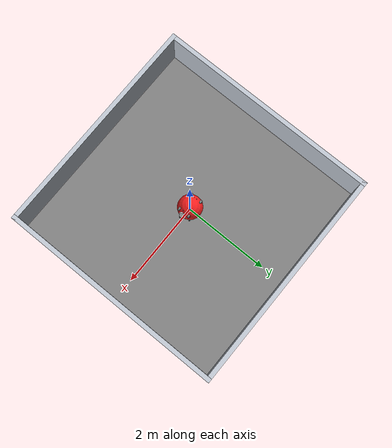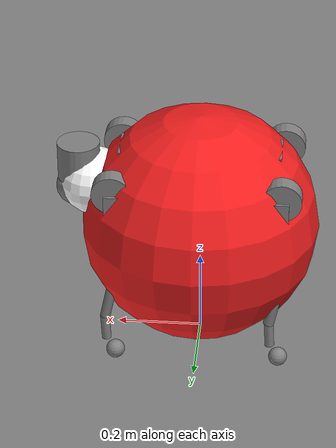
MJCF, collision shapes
<!-- Web viewer arena: uses go2.xml (with OBJ visual meshes) for mjswan. -->
<mujoco model="go2_arena_web">
  <include file="go2_posctrl.xml"/>

  <statistic center="0 0 0.3" extent="4"/>

  <!-- walk_web.xml と同じ照明設定。これが無いとブラウザで壁の内側が
       真っ暗になり、ロボットも鬼もほとんど見えない。 -->
  <visual>
    <headlight diffuse="0.6 0.6 0.6" ambient="0.4 0.4 0.4" specular="0 0 0"/>
    <rgba haze="0.15 0.25 0.35 1"/>
    <global azimuth="-120" elevation="-20"/>
  </visual>

  <asset>
    <texture type="skybox" builtin="gradient"
      rgb1="0.4 0.6 0.8" rgb2="0.1 0.2 0.3" width="512" height="3072"/>
    <texture type="2d" name="floor_tex" builtin="checker"
      rgb1="0.55 0.55 0.55" rgb2="0.45 0.45 0.45" width="200" height="200"/>
    <material name="floor_mat" texture="floor_tex" texrepeat="5 5" reflectance="0.1"/>
    <material name="wall_mat" rgba="0.75 0.78 0.82 1"/>
    <material name="oni_mat" rgba="0.95 0.12 0.12 1"/>
  </asset>

  <worldbody>
    <light name="sun" pos="0 0 4" dir="0 0 -1" directional="true"
      diffuse="0.8 0.8 0.8" specular="0 0 0"/>

    <!-- 5m×5m フロア -->
    <geom name="floor" type="plane" size="2.5 2.5 0.1" material="floor_mat"
      contype="1" conaffinity="1" friction="0.8 0.1 0.1"/>

    <!-- 北壁 y=+2.5 -->
    <geom name="wall_n" type="box" material="wall_mat" pos="0  2.55 0.5" size="2.6 0.05 0.5"
      contype="1" conaffinity="1"/>
    <!-- 南壁 y=-2.5 -->
    <geom name="wall_s" type="box" material="wall_mat" pos="0 -2.55 0.5" size="2.6 0.05 0.5"
      contype="1" conaffinity="1"/>
    <!-- 東壁 x=+2.5 -->
    <geom name="wall_e" type="box" material="wall_mat" pos=" 2.55 0 0.5" size="0.05 2.6 0.5"
      contype="1" conaffinity="1"/>
    <!-- 西壁 x=-2.5 -->
    <geom name="wall_w" type="box" material="wall_mat" pos="-2.55 0 0.5" size="0.05 2.6 0.5"
      contype="1" conaffinity="1"/>

    <!-- 鬼（赤い球）: slide 関節で移動
         qpos[19]=oni_x, qpos[20]=oni_y -->
    <body name="oni" pos="0 0 0.3">
      <joint name="oni_x" type="slide" axis="1 0 0"
        limited="true" range="-2.4 2.4" damping="100" frictionloss="0"/>
      <joint name="oni_y" type="slide" axis="0 1 0"
        limited="true" range="-2.4 2.4" damping="100" frictionloss="0"/>
      <geom name="oni_body" type="sphere" size="0.28" material="oni_mat"
        contype="0" conaffinity="0" mass="0.001"/>
      <!-- 鬼の方向インジケーター（目のような突起） -->
      <geom name="oni_eye" type="sphere" size="0.08" pos="0.25 0 0.1"
        rgba="1 1 1 1" contype="0" conaffinity="0" mass="0"/>
    </body>
  </worldbody>

  <keyframe>
    <key name="arena_home"
      qpos="0 0 0.27 1 0 0 0 0 0.9 -1.8 0 0.9 -1.8 0 0.9 -1.8 0 0.9 -1.8 1.6 1.6"
      ctrl="0 0.9 -1.8 0 0.9 -1.8 0 0.9 -1.8 0 0.9 -1.8" />
  </keyframe>
</mujoco>

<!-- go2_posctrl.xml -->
<!-- Go2 with position actuators (kp=20, joint damping=0.5).
     Use this for both mjswan viewer AND training so that ctrl = q_target
     and physics handles the PD internally. -->
<mujoco model="go2_posctrl">
  <compiler angle="radian" meshdir="assets" autolimits="true" />

  <option cone="elliptic" impratio="100" />

  <default>
    <default class="go2">
      <geom friction="0.4" margin="0.001" condim="1"/>
      <!-- damping=0.5 matches KD used in manual PD of the motor version -->
      <joint axis="0 1 0" damping="0.5" armature="0.01" frictionloss="0.2"/>
      <default class="abduction">
        <joint axis="1 0 0" range="-1.0472 1.0472"/>
        <position ctrlrange="-1.0472 1.0472"/>
      </default>
      <default class="hip">
        <default class="front_hip">
          <joint range="-1.5708 3.4907"/>
          <position ctrlrange="-1.5708 3.4907"/>
        </default>
        <default class="back_hip">
          <joint range="-0.5236 4.5379"/>
          <position ctrlrange="-0.5236 4.5379"/>
        </default>
      </default>
      <default class="knee">
        <joint range="-2.7227 -0.83776"/>
        <position ctrlrange="-2.7227 -0.83776"/>
      </default>
      <default class="visual">
        <geom type="mesh" contype="0" conaffinity="0" group="2"/>
      </default>
      <default class="collision">
        <geom group="3"/>
        <default class="foot">
          <geom size="0.022" pos="-0.002 0 -0.213" priority="1" condim="6"
            friction="0.4 0.02 0.01"/>
        </default>
      </default>
    </default>
  </default>

  <asset>
    <material name="metal" rgba=".9 .95 .95 1" />
    <material name="black" rgba="0 0 0 1" />
    <material name="white" rgba="1 1 1 1" />
    <material name="gray" rgba="0.671705 0.692426 0.774270 1" />

    <mesh file="base_0.obj" />
    <mesh file="base_1.obj" />
    <mesh file="base_2.obj" />
    <mesh file="base_3.obj" />
    <mesh file="base_4.obj" />
    <mesh file="hip_0.obj" />
    <mesh file="hip_1.obj" />
    <mesh file="thigh_0.obj" />
    <mesh file="thigh_1.obj" />
    <mesh file="thigh_mirror_0.obj" />
    <mesh file="thigh_mirror_1.obj" />
    <mesh file="calf_0.obj" />
    <mesh file="calf_1.obj" />
    <mesh file="calf_mirror_0.obj" />
    <mesh file="calf_mirror_1.obj" />
    <mesh file="foot.obj" />
  </asset>

  <worldbody>
    <body name="base_link" pos="0 0 0.445" childclass="go2">
      <inertial pos="0.021112 0 -0.005366" quat="-0.000543471 0.713435 -0.00173769 0.700719"
        mass="6.921"
        diaginertia="0.107027 0.0980771 0.0244531" />
      <freejoint />
      <geom mesh="base_0" material="black" class="visual" />
      <geom mesh="base_1" material="black" class="visual" />
      <geom mesh="base_2" material="black" class="visual" />
      <geom mesh="base_3" material="white" class="visual" />
      <geom mesh="base_4" material="gray" class="visual" />
      <geom size="0.1881 0.04675 0.057" type="box" class="collision" />
      <geom size="0.05 0.045" pos="0.285 0 0.01" type="cylinder" class="collision" />
      <geom size="0.047" pos="0.293 0 -0.06" class="collision" />
      <site name="imu" pos="-0.02557 0 0.04232" />
      <body name="FL_hip" pos="0.1934 0.0465 0">
        <inertial pos="-0.0054 0.00194 -0.000105" quat="0.497014 0.499245 0.505462 0.498237"
          mass="0.678"
          diaginertia="0.00088403 0.000596003 0.000479967" />
        <joint name="FL_hip_joint" class="abduction" />
        <geom mesh="hip_0" material="metal" class="visual" />
        <geom mesh="hip_1" material="gray" class="visual" />
        <geom size="0.046 0.02" pos="0 0.08 0" quat="1 1 0 0" type="cylinder" class="collision" />
        <body name="FL_thigh" pos="0 0.0955 0">
          <inertial pos="-0.00374 -0.0223 -0.0327" quat="0.829533 0.0847635 -0.0200632 0.551623"
            mass="1.152"
            diaginertia="0.00594973 0.00584149 0.000878787" />
          <joint name="FL_thigh_joint" class="front_hip" />
          <geom mesh="thigh_0" material="metal" class="visual" />
          <geom mesh="thigh_1" material="gray" class="visual" />
          <geom size="0.1065 0.01225 0.017" pos="0 0 -0.1065" quat="0.707107 0 0.707107 0"
            type="box" class="collision" />
          <body name="FL_calf" pos="0 0 -0.213">
            <inertial pos="0.00629595 -0.000622121 -0.141417"
              quat="0.710672 0.00154099 -0.00450087 0.703508"
              mass="0.241352" diaginertia="0.0014901 0.00146356 5.31397e-05" />
            <joint name="FL_calf_joint" class="knee" />
            <geom mesh="calf_0" material="gray" class="visual" />
            <geom mesh="calf_1" material="black" class="visual" />
            <geom size="0.012 0.06" pos="0.008 0 -0.06" quat="0.994493 0 -0.104807 0"
              type="cylinder" class="collision" />
            <geom size="0.011 0.0325" pos="0.02 0 -0.148" quat="0.999688 0 0.0249974 0"
              type="cylinder" class="collision" />
            <geom pos="0 0 -0.213" mesh="foot" class="visual" material="black" />
            <geom name="FL" class="foot" />
            <body name="FL_foot" pos="0 0 -0.213" />
          </body>
        </body>
      </body>
      <body name="FR_hip" pos="0.1934 -0.0465 0">
        <inertial pos="-0.0054 -0.00194 -0.000105" quat="0.498237 0.505462 0.499245 0.497014"
          mass="0.678"
          diaginertia="0.00088403 0.000596003 0.000479967" />
        <joint name="FR_hip_joint" class="abduction" />
        <geom mesh="hip_0" material="metal" class="visual" quat="4.63268e-05 1 0 0" />
        <geom mesh="hip_1" material="gray" class="visual" quat="4.63268e-05 1 0 0" />
        <geom size="0.046 0.02" pos="0 -0.08 0" quat="0.707107 0.707107 0 0" type="cylinder"
          class="collision" />
        <body name="FR_thigh" pos="0 -0.0955 0">
          <inertial pos="-0.00374 0.0223 -0.0327" quat="0.551623 -0.0200632 0.0847635 0.829533"
            mass="1.152"
            diaginertia="0.00594973 0.00584149 0.000878787" />
          <joint name="FR_thigh_joint" class="front_hip" />
          <geom mesh="thigh_mirror_0" material="metal" class="visual" />
          <geom mesh="thigh_mirror_1" material="gray" class="visual" />
          <geom size="0.1065 0.01225 0.017" pos="0 0 -0.1065" quat="0.707107 0 0.707107 0"
            type="box" class="collision" />
          <body name="FR_calf" pos="0 0 -0.213">
            <inertial pos="0.00629595 0.000622121 -0.141417"
              quat="0.703508 -0.00450087 0.00154099 0.710672"
              mass="0.241352" diaginertia="0.0014901 0.00146356 5.31397e-05" />
            <joint name="FR_calf_joint" class="knee" />
            <geom mesh="calf_mirror_0" material="gray" class="visual" />
            <geom mesh="calf_mirror_1" material="black" class="visual" />
            <geom size="0.013 0.06" pos="0.01 0 -0.06" quat="0.995004 0 -0.0998334 0"
              type="cylinder" class="collision" />
            <geom size="0.011 0.0325" pos="0.02 0 -0.148" quat="0.999688 0 0.0249974 0"
              type="cylinder" class="collision" />
            <geom pos="0 0 -0.213" mesh="foot" class="visual" material="black" />
            <geom name="FR" class="foot" />
            <body name="FR_foot" pos="0 0 -0.213" />
          </body>
        </body>
      </body>
      <body name="RL_hip" pos="-0.1934 0.0465 0">
        <inertial pos="0.0054 0.00194 -0.000105" quat="0.505462 0.498237 0.497014 0.499245"
          mass="0.678"
          diaginertia="0.00088403 0.000596003 0.000479967" />
        <joint name="RL_hip_joint" class="abduction" />
        <geom mesh="hip_0" material="metal" class="visual" quat="4.63268e-05 0 1 0" />
        <geom mesh="hip_1" material="gray" class="visual" quat="4.63268e-05 0 1 0" />
        <geom size="0.046 0.02" pos="0 0.08 0" quat="0.707107 0.707107 0 0" type="cylinder"
          class="collision" />
        <body name="RL_thigh" pos="0 0.0955 0">
          <inertial pos="-0.00374 -0.0223 -0.0327" quat="0.829533 0.0847635 -0.0200632 0.551623"
            mass="1.152"
            diaginertia="0.00594973 0.00584149 0.000878787" />
          <joint name="RL_thigh_joint" class="back_hip" />
          <geom mesh="thigh_0" material="metal" class="visual" />
          <geom mesh="thigh_1" material="gray" class="visual" />
          <geom size="0.1065 0.01225 0.017" pos="0 0 -0.1065" quat="0.707107 0 0.707107 0"
            type="box" class="collision" />
          <body name="RL_calf" pos="0 0 -0.213">
            <inertial pos="0.00629595 -0.000622121 -0.141417"
              quat="0.710672 0.00154099 -0.00450087 0.703508"
              mass="0.241352" diaginertia="0.0014901 0.00146356 5.31397e-05" />
            <joint name="RL_calf_joint" class="knee" />
            <geom mesh="calf_0" material="gray" class="visual" />
            <geom mesh="calf_1" material="black" class="visual" />
            <geom size="0.013 0.06" pos="0.01 0 -0.06" quat="0.995004 0 -0.0998334 0"
              type="cylinder" class="collision" />
            <geom size="0.011 0.0325" pos="0.02 0 -0.148" quat="0.999688 0 0.0249974 0"
              type="cylinder" class="collision" />
            <geom pos="0 0 -0.213" mesh="foot" class="visual" material="black" />
            <geom name="RL" class="foot" />
            <body name="RL_foot" pos="0 0 -0.213" />
          </body>
        </body>
      </body>
      <body name="RR_hip" pos="-0.1934 -0.0465 0">
        <inertial pos="0.0054 -0.00194 -0.000105" quat="0.499245 0.497014 0.498237 0.505462"
          mass="0.678"
          diaginertia="0.00088403 0.000596003 0.000479967" />
        <joint name="RR_hip_joint" class="abduction" />
        <geom mesh="hip_0" material="gray" class="visual"
          quat="2.14617e-09 4.63268e-05 4.63268e-05 -1" />
        <geom mesh="hip_1" material="gray" class="visual"
          quat="2.14617e-09 4.63268e-05 4.63268e-05 -1" />
        <geom size="0.046 0.02" pos="0 -0.08 0" quat="0.707107 0.707107 0 0" type="cylinder"
          class="collision" />
        <body name="RR_thigh" pos="0 -0.0955 0">
          <inertial pos="-0.00374 0.0223 -0.0327" quat="0.551623 -0.0200632 0.0847635 0.829533"
            mass="1.152"
            diaginertia="0.00594973 0.00584149 0.000878787" />
          <joint name="RR_thigh_joint" class="back_hip" />
          <geom mesh="thigh_mirror_0" material="metal" class="visual" />
          <geom mesh="thigh_mirror_1" material="gray" class="visual" />
          <geom size="0.1065 0.01225 0.017" pos="0 0 -0.1065" quat="0.707107 0 0.707107 0"
            type="box" class="collision" />
          <body name="RR_calf" pos="0 0 -0.213">
            <inertial pos="0.00629595 0.000622121 -0.141417"
              quat="0.703508 -0.00450087 0.00154099 0.710672"
              mass="0.241352" diaginertia="0.0014901 0.00146356 5.31397e-05" />
            <joint name="RR_calf_joint" class="knee" />
            <geom mesh="calf_mirror_0" material="gray" class="visual" />
            <geom mesh="calf_mirror_1" material="black" class="visual" />
            <geom size="0.013 0.06" pos="0.01 0 -0.06" quat="0.995004 0 -0.0998334 0"
              type="cylinder" class="collision" />
            <geom size="0.011 0.0325" pos="0.02 0 -0.148" quat="0.999688 0 0.0249974 0"
              type="cylinder" class="collision" />
            <geom pos="0 0 -0.213" mesh="foot" class="visual" material="black" />
            <geom name="RR" class="foot" />
            <body name="RR_foot" pos="0 0 -0.213" />
          </body>
        </body>
      </body>
    </body>
  </worldbody>

  <sensor>
    <jointpos name="FR_hip_pos"   joint="FR_hip_joint"   />
    <jointpos name="FR_thigh_pos" joint="FR_thigh_joint" />
    <jointpos name="FR_calf_pos"  joint="FR_calf_joint"  />
    <jointpos name="FL_hip_pos"   joint="FL_hip_joint"   />
    <jointpos name="FL_thigh_pos" joint="FL_thigh_joint" />
    <jointpos name="FL_calf_pos"  joint="FL_calf_joint"  />
    <jointpos name="RR_hip_pos"   joint="RR_hip_joint"   />
    <jointpos name="RR_thigh_pos" joint="RR_thigh_joint" />
    <jointpos name="RR_calf_pos"  joint="RR_calf_joint"  />
    <jointpos name="RL_hip_pos"   joint="RL_hip_joint"   />
    <jointpos name="RL_thigh_pos" joint="RL_thigh_joint" />
    <jointpos name="RL_calf_pos"  joint="RL_calf_joint"  />

    <jointvel name="FR_hip_vel"   joint="FR_hip_joint"   />
    <jointvel name="FR_thigh_vel" joint="FR_thigh_joint" />
    <jointvel name="FR_calf_vel"  joint="FR_calf_joint"  />
    <jointvel name="FL_hip_vel"   joint="FL_hip_joint"   />
    <jointvel name="FL_thigh_vel" joint="FL_thigh_joint" />
    <jointvel name="FL_calf_vel"  joint="FL_calf_joint"  />
    <jointvel name="RR_hip_vel"   joint="RR_hip_joint"   />
    <jointvel name="RR_thigh_vel" joint="RR_thigh_joint" />
    <jointvel name="RR_calf_vel"  joint="RR_calf_joint"  />
    <jointvel name="RL_hip_vel"   joint="RL_hip_joint"   />
    <jointvel name="RL_thigh_vel" joint="RL_thigh_joint" />
    <jointvel name="RL_calf_vel"  joint="RL_calf_joint"  />

    <framequat    name="imu_quat" objtype="site" objname="imu" />
    <gyro         name="imu_gyro" site="imu" />
    <accelerometer name="imu_acc" site="imu" />
    <framepos     name="frame_pos" objtype="site" objname="imu" />
    <framelinvel  name="frame_vel" objtype="site" objname="imu" />
  </sensor>

  <!-- Position actuators: ctrl = q_target (rad), physics computes tau = kp*(ctrl-q) - kd*qdot -->
  <actuator>
    <position kp="20" name="FR_hip"   joint="FR_hip_joint"   class="abduction" />
    <position kp="20" name="FR_thigh" joint="FR_thigh_joint" class="front_hip" />
    <position kp="20" name="FR_calf"  joint="FR_calf_joint"  class="knee"      />
    <position kp="20" name="FL_hip"   joint="FL_hip_joint"   class="abduction" />
    <position kp="20" name="FL_thigh" joint="FL_thigh_joint" class="front_hip" />
    <position kp="20" name="FL_calf"  joint="FL_calf_joint"  class="knee"      />
    <position kp="20" name="RR_hip"   joint="RR_hip_joint"   class="abduction" />
    <position kp="20" name="RR_thigh" joint="RR_thigh_joint" class="back_hip"  />
    <position kp="20" name="RR_calf"  joint="RR_calf_joint"  class="knee"      />
    <position kp="20" name="RL_hip"   joint="RL_hip_joint"   class="abduction" />
    <position kp="20" name="RL_thigh" joint="RL_thigh_joint" class="back_hip"  />
    <position kp="20" name="RL_calf"  joint="RL_calf_joint"  class="knee"      />
  </actuator>

  <keyframe>
    <key name="home" qpos="0 0 0.27 1 0 0 0 0 0.9 -1.8 0 0.9 -1.8 0 0.9 -1.8 0 0.9 -1.8"
      ctrl="0 0.9 -1.8 0 0.9 -1.8 0 0.9 -1.8 0 0.9 -1.8" />
  </keyframe>
</mujoco>
